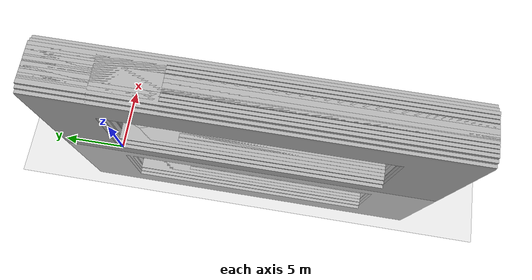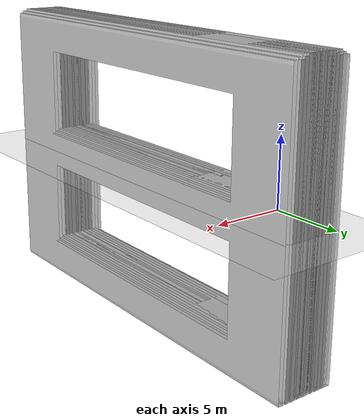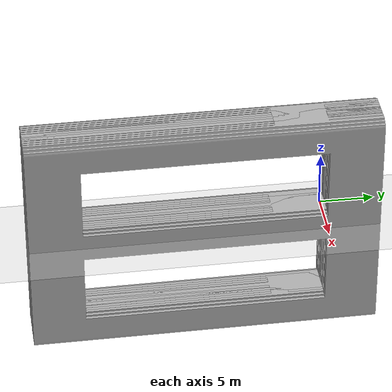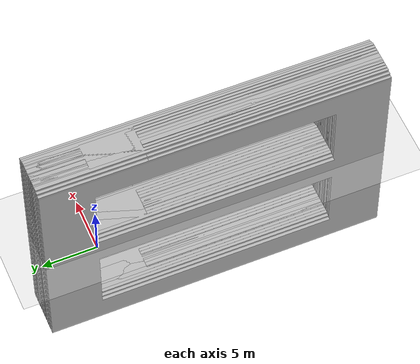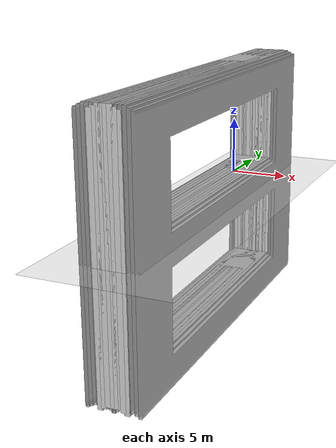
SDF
<?xml version="1.0" ?>
<sdf version="1.4">
  <world name="default">
    <physics type='ode'>
      <gravity>0 0 -9.81</gravity>
      <!-- max step size has to be a multiple of the desired task rate-->
      <max_step_size>0.001</max_step_size>
      <real_time_factor>1</real_time_factor>
    </physics>
    <!-- A global light source -->
    <include>
      <uri>model://sun</uri>
    </include>
    <!-- A ground plane -->
    <include>
      <uri>model://ground_plane</uri>
    </include>

    <!-- first stair starts at 0.8-->

    <include>
      <name>pallet300x1000x160mm</name>
      <uri>model://pallet300x1000x160mm</uri>
      <pose>0.8 0 0 0 0 0</pose>

    </include>

    <include>
      <name>pallet300x1000x160mm</name>
      <uri>model://pallet300x1000x160mm</uri>
      <pose>1.1 0 0.16 0 0 0 </pose>
    </include>

    <include>
      <name>pallet300x1000x160mm</name>
      <uri>model://pallet300x1000x160mm</uri>
      <pose>1.4 0 0.32 0 0 0 </pose>
    </include>

    <include>
      <name>pallet300x1000x160mm</name>
      <uri>model://pallet300x1000x160mm</uri>
      <pose>1.7 0 0.32 0 0 0 </pose>
    </include>

    <include>
      <name>pallet300x1000x160mm</name>
      <uri>model://pallet300x1000x160mm</uri>
      <pose>2.0 0 0.32 0 0 0 </pose>
    </include>

    <include>
      <name>pallet300x1000x160mm</name>
      <uri>model://pallet300x1000x160mm</uri>
      <pose>2.3 0 0.32 0 0 0 </pose>
    </include>

    <!-- second stair starts at 2.6-->

    <include>
      <name>pallet300x1000x160mm</name>
      <uri>model://pallet300x1000x160mm</uri>
      <pose>2.6 0 0.16 0 0 0</pose>
    </include>

    <include>
      <name>pallet300x1000x160mm</name>
      <uri>model://pallet300x1000x160mm</uri>
      <pose>2.9 0 0.0 0 0 0 </pose>
    </include>

  </world>
</sdf>

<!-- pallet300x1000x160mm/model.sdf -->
<sdf version="1.4">
	<model name="pallet770x1000x140mm">
		<static>true</static>
		<link name="link">
			<pose>0 0 0.06 0 0 0</pose>
			<collision name="collision">
				<geometry>
					<mesh>
						<uri>model://pallet300x1000x160mm/mesh/pallet.dae</uri>
						<!-- original size = 1.016 x 0.090678 x 0.090678 m -->
						<!-- final size = 0.3 x 1 x 0.16 m -->
						<scale>0.297 22 1.76</scale>
					</mesh>
				</geometry>
			</collision>
			<visual name="visual">
				<geometry>
					<mesh>
						<uri>model://pallet300x1000x160mm/mesh/pallet.dae</uri>
						<!-- original size = 1.016 x 0.090678 x 0.090678 m -->
						<!-- final size =  0.3 x 1 x 0.16 m -->
						<scale>0.297 22 1.76</scale>
					</mesh>
				</geometry>
			</visual>
		</link>
	</model>
</sdf>
